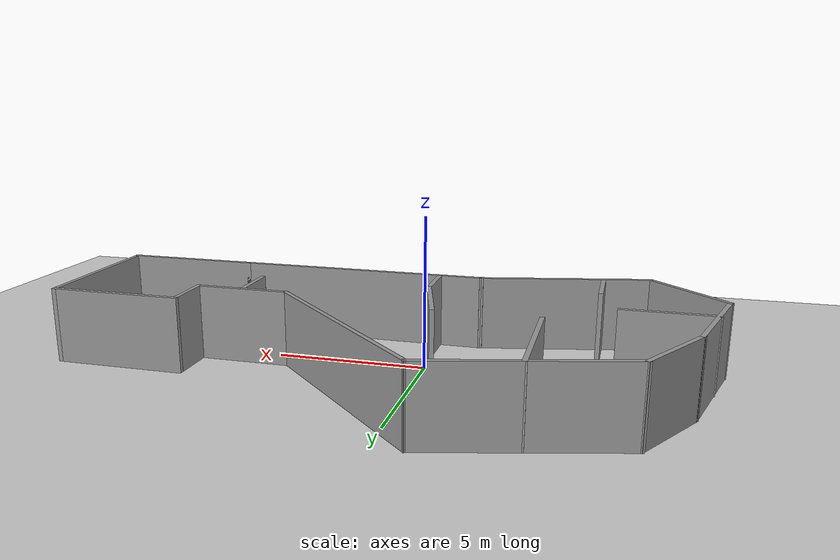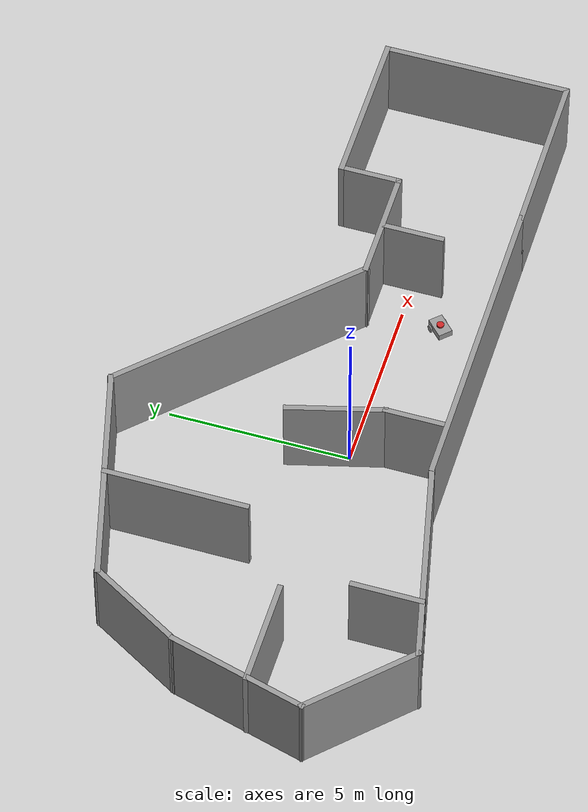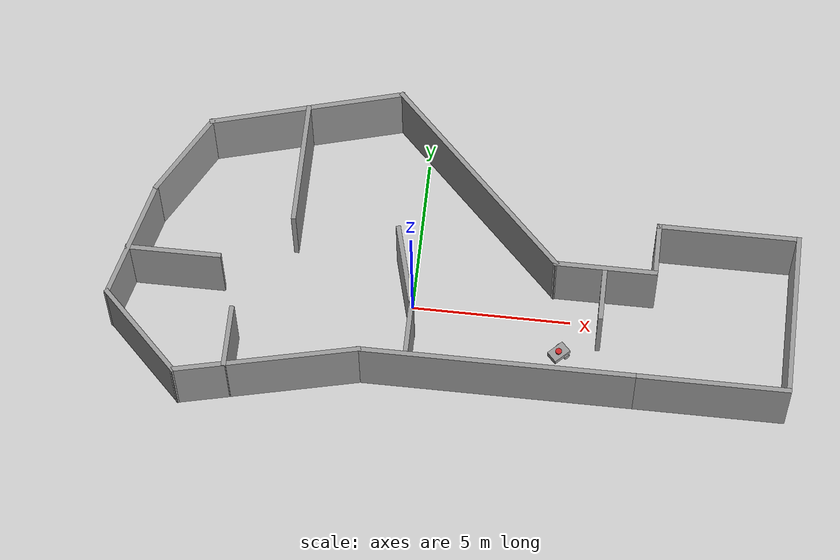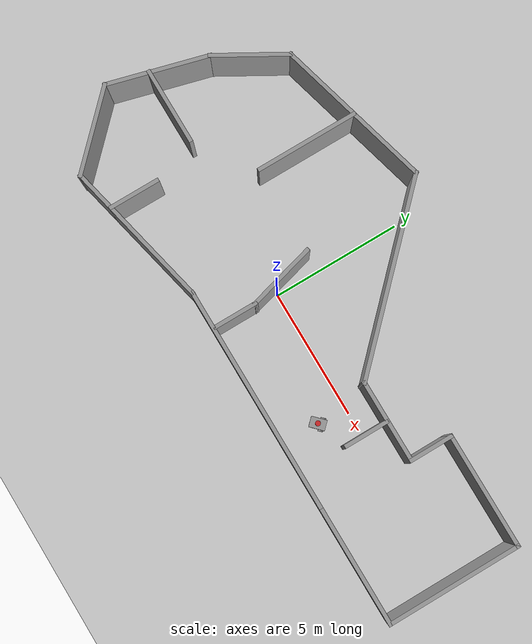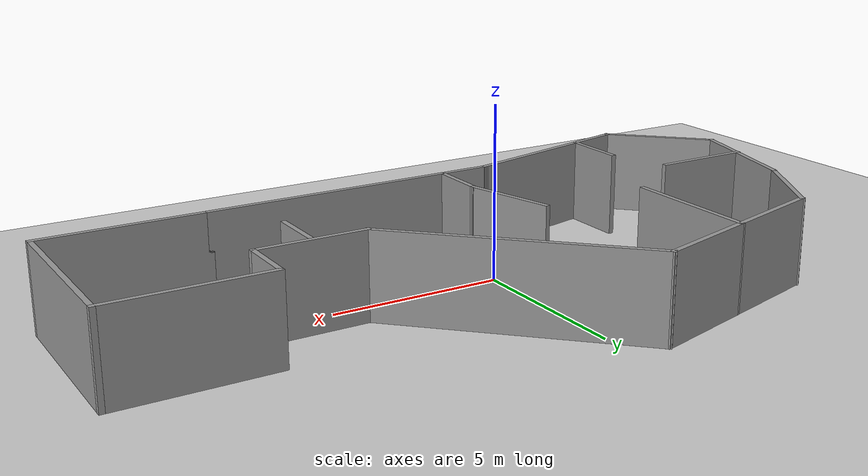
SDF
<sdf version="1.7">
 <world name="default">
  <light name="sun" type="directional">
   <pose>0 0 10 0 -0 0</pose>
   <diffuse>0.8 0.8 0.8 1</diffuse>
   <specular>0.2 0.2 0.2 1</specular>
   <attenuation>
    <range>1000</range>
    <constant>0.9</constant>
    <linear>0.01</linear>
    <quadratic>0.001</quadratic>
   </attenuation>
   <direction>-0.5 0.1 -0.9</direction>
   <spot><inner_angle>0</inner_angle><outer_angle>0</outer_angle><falloff>0</falloff></spot>
  </light>
  <model name="ground_plane">
   <static>1</static>
   <link name="link">
    <collision name="collision">
     <geometry><plane><normal>0 0 1</normal><size>100 100</size></plane></geometry>
     <surface><friction><ode><mu>100</mu><mu2>50</mu2></ode></friction></surface>
    </collision>
    <visual name="visual">
     <cast_shadows>0</cast_shadows>
     <geometry><plane><normal>0 0 1</normal><size>100 100</size></plane></geometry>
     <material>
      <script><uri>file://media/materials/scripts/gazebo.material</uri><name>Gazebo/Grey</name></script>
     </material>
    </visual>
   </link>
  </model>
  <gravity>0 0 -9.8</gravity>
  <magnetic_field>6e-06 2.3e-05 -4.2e-05</magnetic_field>
  <atmosphere type="adiabatic"/>
  <physics type="ode">
   <max_step_size>0.001</max_step_size>
   <real_time_factor>1</real_time_factor>
   <real_time_update_rate>1000</real_time_update_rate>
  </physics>
  <scene><ambient>0.4 0.4 0.4 1</ambient><background>0.7 0.7 0.7 1</background><shadows>1</shadows></scene>
  <audio><device>default</device></audio>
  <spherical_coordinates>
   <surface_model>EARTH_WGS84</surface_model>
   <latitude_deg>0</latitude_deg>
   <longitude_deg>0</longitude_deg>
   <elevation>0</elevation>
   <heading_deg>0</heading_deg>
  </spherical_coordinates>
  <model name="my_robot">
   <link name="base_footprint">
    <inertial>
     <pose>0.028571 0 0.196429 0 -0 0</pose>
     <mass>7</mass>
     <inertia>
      <ixx>0.719536</ixx>
      <ixy>0</ixy>
      <ixz>0.0292857</ixz>
      <iyy>0.953821</iyy>
      <iyz>0</iyz>
      <izz>0.391619</izz>
     </inertia>
    </inertial>
    <collision name="base_footprint_fixed_joint_lump__base_link_collision">
     <pose>0 0 0.2 0 -0 0</pose>
     <geometry><box><size>0.6 0.4 0.2</size></box></geometry>
    </collision>
    <collision name="base_footprint_fixed_joint_lump__caster_wheel_collision_1">
     <pose>0.2 0 0.05 0 -0 0</pose>
     <geometry><sphere><radius>0.05</radius></sphere></geometry>
     <surface><friction><ode><mu>0.1</mu><mu2>0.1</mu2></ode></friction></surface>
    </collision>
    <collision name="base_footprint_fixed_joint_lump__laser_frame_collision_2">
     <pose>0 0 0.325 0 -0 0</pose>
     <geometry><cylinder><length>0.05</length><radius>0.1</radius></cylinder></geometry>
    </collision>
    <visual name="base_footprint_fixed_joint_lump__base_link_visual">
     <pose>0 0 0.2 0 -0 0</pose>
     <geometry><box><size>0.6 0.4 0.2</size></box></geometry>
     <material>
      <script><name>Gazebo/Grey</name><uri>file://media/materials/scripts/gazebo.material</uri></script>
     </material>
    </visual>
    <visual name="base_footprint_fixed_joint_lump__caster_wheel_visual_1">
     <pose>0.2 0 0.05 0 -0 0</pose>
     <geometry><sphere><radius>0.05</radius></sphere></geometry>
     <material>
      <script><name>Gazebo/Red</name><uri>file://media/materials/scripts/gazebo.material</uri></script>
     </material>
    </visual>
    <visual name="base_footprint_fixed_joint_lump__laser_frame_visual_2">
     <pose>0 0 0.325 0 -0 0</pose>
     <geometry><cylinder><length>0.05</length><radius>0.1</radius></cylinder></geometry>
     <material>
      <script><name>Gazebo/Red</name><uri>file://media/materials/scripts/gazebo.material</uri></script>
     </material>
    </visual>
    <sensor name="laser" type="ray">
     <visualize>1</visualize>
     <update_rate>10</update_rate>
     <ray>
      <scan>
       <horizontal>
        <samples>360</samples>
        <min_angle>-3.14</min_angle>
        <max_angle>3.14</max_angle>
        <resolution>1</resolution>
       </horizontal>
       <vertical><samples>1</samples><min_angle>0</min_angle><max_angle>0</max_angle></vertical>
      </scan>
      <range><min>0.3</min><max>12</max></range>
     </ray>
     <plugin name="laser_controller" filename="libgazebo_ros_ray_sensor.so">
      <ros><argument>~/out:=scan</argument></ros>
      <output_type>sensor_msgs/LaserScan</output_type>
      <frame_name>laser_frame</frame_name>
     </plugin>
     <pose>0 0 0.325 0 -0 0</pose>
    </sensor>
   </link>
   <joint name="base_left_wheel_joint" type="revolute">
    <pose relative_to="base_footprint">-0.15 0.225 0.1 0 -0 0</pose>
    <parent>base_footprint</parent>
    <child>left_wheel</child>
    <axis>
     <xyz>0 1 0</xyz>
     <limit><lower>-1e+16</lower><upper>1e+16</upper></limit>
     <dynamics><spring_reference>0</spring_reference><spring_stiffness>0</spring_stiffness></dynamics>
    </axis>
   </joint>
   <link name="left_wheel">
    <pose relative_to="base_left_wheel_joint">0 0 0 0 -0 0</pose>
    <inertial>
     <pose>0 0 0 1.5708 -0 0</pose>
     <mass>1</mass>
     <inertia><ixx>0.0108333</ixx><ixy>0</ixy><ixz>0</ixz><iyy>0.0108333</iyy><iyz>0</iyz><izz>0.02</izz></inertia>
    </inertial>
    <collision name="left_wheel_collision">
     <pose>0 0 0 1.5708 -0 0</pose>
     <geometry><cylinder><length>0.05</length><radius>0.1</radius></cylinder></geometry>
    </collision>
    <visual name="left_wheel_visual">
     <pose>0 0 0 1.5708 -0 0</pose>
     <geometry><cylinder><length>0.05</length><radius>0.1</radius></cylinder></geometry>
     <material>
      <script><name>Gazebo/Grey</name><uri>file://media/materials/scripts/gazebo.material</uri></script>
     </material>
    </visual>
   </link>
   <joint name="base_right_wheel_joint" type="revolute">
    <pose relative_to="base_footprint">-0.15 -0.225 0.1 0 -0 0</pose>
    <parent>base_footprint</parent>
    <child>right_wheel</child>
    <axis>
     <xyz>0 1 0</xyz>
     <limit><lower>-1e+16</lower><upper>1e+16</upper></limit>
     <dynamics><spring_reference>0</spring_reference><spring_stiffness>0</spring_stiffness></dynamics>
    </axis>
   </joint>
   <link name="right_wheel">
    <pose relative_to="base_right_wheel_joint">0 0 0 0 -0 0</pose>
    <inertial>
     <pose>0 0 0 1.5708 -0 0</pose>
     <mass>1</mass>
     <inertia><ixx>0.0108333</ixx><ixy>0</ixy><ixz>0</ixz><iyy>0.0108333</iyy><iyz>0</iyz><izz>0.02</izz></inertia>
    </inertial>
    <collision name="right_wheel_collision">
     <pose>0 0 0 1.5708 -0 0</pose>
     <geometry><cylinder><length>0.05</length><radius>0.1</radius></cylinder></geometry>
    </collision>
    <visual name="right_wheel_visual">
     <pose>0 0 0 1.5708 -0 0</pose>
     <geometry><cylinder><length>0.05</length><radius>0.1</radius></cylinder></geometry>
     <material>
      <script><name>Gazebo/Grey</name><uri>file://media/materials/scripts/gazebo.material</uri></script>
     </material>
    </visual>
   </link>
   <static>0</static>
   <plugin name="gazebo_ros_diff_drive" filename="libgazebo_ros_diff_drive.so">
    <update_rate>50</update_rate>
    <left_joint>base_left_wheel_joint</left_joint>
    <right_joint>base_right_wheel_joint</right_joint>
    <wheel_separation>0.45</wheel_separation>
    <wheel_diameter>0.1</wheel_diameter>
    <command_topic>cmd_vel</command_topic>
    <publish_odom>1</publish_odom>
    <publish_odom_tf>1</publish_odom_tf>
    <publish_wheel_tf>1</publish_wheel_tf>
    <odometry_topic>odom</odometry_topic>
    <odometry_frame>odom</odometry_frame>
    <robot_base_frame>base_footprint</robot_base_frame>
   </plugin>
   <pose>4.73227 -1.13183 0 0 0 -2.3732</pose>
  </model>
  <model name="Untitled">
   <pose>1.25566 1.18672 0 0 -0 0</pose>
   <link name="Wall_0">
    <collision name="Wall_0_Collision">
     <geometry><box><size>8.75 0.15 2.5</size></box></geometry>
     <pose>0 0 1.25 0 -0 0</pose>
    </collision>
    <visual name="Wall_0_Visual">
     <pose>0 0 1.25 0 -0 0</pose>
     <geometry><box><size>8.75 0.15 2.5</size></box></geometry>
     <material>
      <script><uri>file://media/materials/scripts/gazebo.material</uri><name>Gazebo/Grey</name></script>
      <ambient>1 1 1 1</ambient>
     </material>
     <meta><layer>0</layer></meta>
    </visual>
    <pose>1.68434 -3.80672 0 0 -0 0</pose>
   </link>
   <link name="Wall_10">
    <collision name="Wall_10_Collision">
     <geometry><box><size>4 0.15 2.5</size></box></geometry>
     <pose>0 0 1.25 0 -0 0</pose>
    </collision>
    <visual name="Wall_10_Visual">
     <pose>0 0 1.25 0 -0 0</pose>
     <geometry><box><size>4 0.15 2.5</size></box></geometry>
     <material>
      <script><uri>file://media/materials/scripts/gazebo.material</uri><name>Gazebo/Grey</name></script>
      <ambient>1 1 1 1</ambient>
     </material>
     <meta><layer>0</layer></meta>
    </visual>
    <pose>-10.055 -0.839081 0 0 -0 -1.8326</pose>
   </link>
   <link name="Wall_11">
    <collision name="Wall_11_Collision">
     <geometry><box><size>3.5 0.15 2.5</size></box></geometry>
     <pose>0 0 1.25 0 -0 0</pose>
    </collision>
    <visual name="Wall_11_Visual">
     <pose>0 0 1.25 0 -0 0</pose>
     <geometry><box><size>3.5 0.15 2.5</size></box></geometry>
     <material>
      <script><uri>file://media/materials/scripts/gazebo.material</uri><name>Gazebo/Grey</name></script>
      <ambient>1 1 1 1</ambient>
     </material>
     <meta><layer>0</layer></meta>
    </visual>
    <pose>-9.36887 -3.88289 0 0 -0 -0.785398</pose>
   </link>
   <link name="Wall_14">
    <collision name="Wall_14_Collision">
     <geometry><box><size>5.8597 0.15 2.5</size></box></geometry>
     <pose>0 0 1.25 0 -0 0</pose>
    </collision>
    <visual name="Wall_14_Visual">
     <pose>0 0 1.25 0 -0 0</pose>
     <geometry><box><size>5.8597 0.15 2.5</size></box></geometry>
     <material>
      <script><uri>file://media/materials/scripts/gazebo.material</uri><name>Gazebo/Grey</name></script>
      <ambient>1 1 1 1</ambient>
     </material>
     <meta><layer>0</layer></meta>
    </visual>
    <pose>-5.40006 -4.43701 0 0 -0 0.222613</pose>
   </link>
   <link name="Wall_16">
    <collision name="Wall_16_Collision">
     <geometry><box><size>3 0.15 2.5</size></box></geometry>
     <pose>0 0 1.25 0 -0 0</pose>
    </collision>
    <visual name="Wall_16_Visual">
     <pose>0 0 1.25 0 -0 0</pose>
     <geometry><box><size>3 0.15 2.5</size></box></geometry>
     <material>
      <script><uri>file://media/materials/scripts/gazebo.material</uri><name>Gazebo/Grey</name></script>
      <ambient>1 1 1 1</ambient>
     </material>
     <meta><layer>0</layer></meta>
    </visual>
    <pose>-8.72418 -1.12509 0 0 -0 0</pose>
   </link>
   <link name="Wall_18">
    <collision name="Wall_18_Collision">
     <geometry><box><size>2 0.15 2.5</size></box></geometry>
     <pose>0 0 1.25 0 -0 0</pose>
    </collision>
    <visual name="Wall_18_Visual">
     <pose>0 0 1.25 0 -0 0</pose>
     <geometry><box><size>2 0.15 2.5</size></box></geometry>
     <material>
      <script><uri>file://media/materials/scripts/gazebo.material</uri><name>Gazebo/Grey</name></script>
      <ambient>1 1 1 1</ambient>
     </material>
     <meta><layer>0</layer></meta>
    </visual>
    <pose>-6.65318 -3.78809 0 0 -0 1.5708</pose>
   </link>
   <link name="Wall_2">
    <collision name="Wall_2_Collision">
     <geometry><box><size>4.75 0.15 2.5</size></box></geometry>
     <pose>0 0 1.25 0 -0 0</pose>
    </collision>
    <visual name="Wall_2_Visual">
     <pose>0 0 1.25 0 -0 0</pose>
     <geometry><box><size>4.75 0.15 2.5</size></box></geometry>
     <material>
      <script><uri>file://media/materials/scripts/gazebo.material</uri><name>Gazebo/Grey</name></script>
      <ambient>1 1 1 1</ambient>
     </material>
     <meta><layer>0</layer></meta>
    </visual>
    <pose>8.28434 -3.80672 0 0 -0 0</pose>
   </link>
   <link name="Wall_21">
    <collision name="Wall_21_Collision">
     <geometry><box><size>4 0.15 2.5</size></box></geometry>
     <pose>0 0 1.25 0 -0 0</pose>
    </collision>
    <visual name="Wall_21_Visual">
     <pose>0 0 1.25 0 -0 0</pose>
     <geometry><box><size>4 0.15 2.5</size></box></geometry>
     <material>
      <script><uri>file://media/materials/scripts/gazebo.material</uri><name>Gazebo/Grey</name></script>
      <ambient>1 1 1 1</ambient>
     </material>
     <meta><layer>0</layer></meta>
    </visual>
    <pose>-5.14632 2.35918 0 0 -0 -1.5708</pose>
   </link>
   <link name="Wall_25">
    <collision name="Wall_25_Collision">
     <geometry><box><size>1.75 0.15 2.5</size></box></geometry>
     <pose>0 0 1.25 0 -0 0</pose>
    </collision>
    <visual name="Wall_25_Visual">
     <pose>0 0 1.25 0 -0 0</pose>
     <geometry><box><size>1.75 0.15 2.5</size></box></geometry>
     <material>
      <script><uri>file://media/materials/scripts/gazebo.material</uri><name>Gazebo/Grey</name></script>
      <ambient>1 1 1 1</ambient>
     </material>
     <meta><layer>0</layer></meta>
    </visual>
    <pose>-1.17177 -2.92576 0 0 -0 1.5708</pose>
   </link>
   <link name="Wall_26">
    <collision name="Wall_26_Collision">
     <geometry><box><size>2.75 0.15 2.5</size></box></geometry>
     <pose>0 0 1.25 0 -0 0</pose>
    </collision>
    <visual name="Wall_26_Visual">
     <pose>0 0 1.25 0 -0 0</pose>
     <geometry><box><size>2.75 0.15 2.5</size></box></geometry>
     <material>
      <script><uri>file://media/materials/scripts/gazebo.material</uri><name>Gazebo/Grey</name></script>
      <ambient>1 1 1 1</ambient>
     </material>
     <meta><layer>0</layer></meta>
    </visual>
    <pose>-1.50823 -0.870061 0 0 -0 1.8326</pose>
   </link>
   <link name="Wall_28">
    <collision name="Wall_28_Collision">
     <geometry><box><size>1.75 0.15 2.5</size></box></geometry>
     <pose>0 0 1.25 0 -0 0</pose>
    </collision>
    <visual name="Wall_28_Visual">
     <pose>0 0 1.25 0 -0 0</pose>
     <geometry><box><size>1.75 0.15 2.5</size></box></geometry>
     <material>
      <script><uri>file://media/materials/scripts/gazebo.material</uri><name>Gazebo/Grey</name></script>
      <ambient>1 1 1 1</ambient>
     </material>
     <meta><layer>0</layer></meta>
    </visual>
    <pose>4.66839 -1.15956 0 0 -0 -1.5708</pose>
   </link>
   <link name="Wall_3">
    <collision name="Wall_3_Collision">
     <geometry><box><size>5.25 0.15 2.5</size></box></geometry>
     <pose>0 0 1.25 0 -0 0</pose>
    </collision>
    <visual name="Wall_3_Visual">
     <pose>0 0 1.25 0 -0 0</pose>
     <geometry><box><size>5.25 0.15 2.5</size></box></geometry>
     <material>
      <script><uri>file://media/materials/scripts/gazebo.material</uri><name>Gazebo/Grey</name></script>
      <ambient>1 1 1 1</ambient>
     </material>
     <meta><layer>0</layer></meta>
    </visual>
    <pose>10.5843 -1.25672 0 0 -0 1.5708</pose>
   </link>
   <link name="Wall_4">
    <collision name="Wall_4_Collision">
     <geometry><box><size>4.5 0.15 2.5</size></box></geometry>
     <pose>0 0 1.25 0 -0 0</pose>
    </collision>
    <visual name="Wall_4_Visual">
     <pose>0 0 1.25 0 -0 0</pose>
     <geometry><box><size>4.5 0.15 2.5</size></box></geometry>
     <material>
      <script><uri>file://media/materials/scripts/gazebo.material</uri><name>Gazebo/Grey</name></script>
      <ambient>1 1 1 1</ambient>
     </material>
     <meta><layer>0</layer></meta>
    </visual>
    <pose>8.40934 1.29328 0 0 -0 3.14159</pose>
   </link>
   <link name="Wall_5">
    <collision name="Wall_5_Collision">
     <geometry><box><size>1.75 0.15 2.5</size></box></geometry>
     <pose>0 0 1.25 0 -0 0</pose>
    </collision>
    <visual name="Wall_5_Visual">
     <pose>0 0 1.25 0 -0 0</pose>
     <geometry><box><size>1.75 0.15 2.5</size></box></geometry>
     <material>
      <script><uri>file://media/materials/scripts/gazebo.material</uri><name>Gazebo/Grey</name></script>
      <ambient>1 1 1 1</ambient>
     </material>
     <meta><layer>0</layer></meta>
    </visual>
    <pose>6.23434 0.493284 0 0 -0 -1.5708</pose>
   </link>
   <link name="Wall_6">
    <collision name="Wall_6_Collision">
     <geometry><box><size>3.25 0.15 2.5</size></box></geometry>
     <pose>0 0 1.25 0 -0 0</pose>
    </collision>
    <visual name="Wall_6_Visual">
     <pose>0 0 1.25 0 -0 0</pose>
     <geometry><box><size>3.25 0.15 2.5</size></box></geometry>
     <material>
      <script><uri>file://media/materials/scripts/gazebo.material</uri><name>Gazebo/Grey</name></script>
      <ambient>1 1 1 1</ambient>
     </material>
     <meta><layer>0</layer></meta>
    </visual>
    <pose>4.68434 -0.306716 0 0 -0 3.14159</pose>
   </link>
   <link name="Wall_7">
    <collision name="Wall_7_Collision">
     <geometry><box><size>7.75 0.15 2.5</size></box></geometry>
     <pose>0 0 1.25 0 -0 0</pose>
    </collision>
    <visual name="Wall_7_Visual">
     <pose>0 0 1.25 0 -0 0</pose>
     <geometry><box><size>7.75 0.15 2.5</size></box></geometry>
     <material>
      <script><uri>file://media/materials/scripts/gazebo.material</uri><name>Gazebo/Grey</name></script>
      <ambient>1 1 1 1</ambient>
     </material>
     <meta><layer>0</layer></meta>
    </visual>
    <pose>0.447333 2.38029 0 0 -0 2.35619</pose>
   </link>
   <link name="Wall_8">
    <collision name="Wall_8_Collision">
     <geometry><box><size>6.25 0.15 2.5</size></box></geometry>
     <pose>0 0 1.25 0 -0 0</pose>
    </collision>
    <visual name="Wall_8_Visual">
     <pose>0 0 1.25 0 -0 0</pose>
     <geometry><box><size>6.25 0.15 2.5</size></box></geometry>
     <material>
      <script><uri>file://media/materials/scripts/gazebo.material</uri><name>Gazebo/Grey</name></script>
      <ambient>1 1 1 1</ambient>
     </material>
     <meta><layer>0</layer></meta>
    </visual>
    <pose>-5.18575 4.2779 0 0 -0 -2.87979</pose>
   </link>
   <link name="Wall_9">
    <collision name="Wall_9_Collision">
     <geometry><box><size>3 0.15 2.5</size></box></geometry>
     <pose>0 0 1.25 0 -0 0</pose>
    </collision>
    <visual name="Wall_9_Visual">
     <pose>0 0 1.25 0 -0 0</pose>
     <geometry><box><size>3 0.15 2.5</size></box></geometry>
     <material>
      <script><uri>file://media/materials/scripts/gazebo.material</uri><name>Gazebo/Grey</name></script>
      <ambient>1 1 1 1</ambient>
     </material>
     <meta><layer>0</layer></meta>
    </visual>
    <pose>-8.84432 2.25441 0 0 -0 -2.0944</pose>
   </link>
   <static>1</static>
  </model>
 </world>
</sdf>
